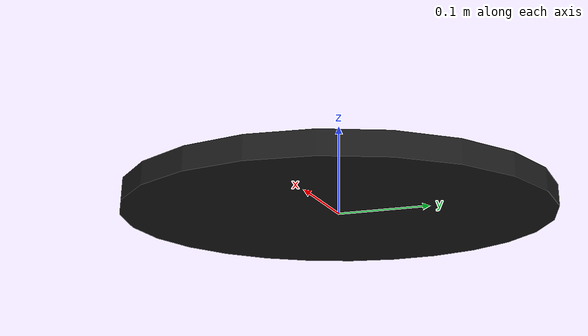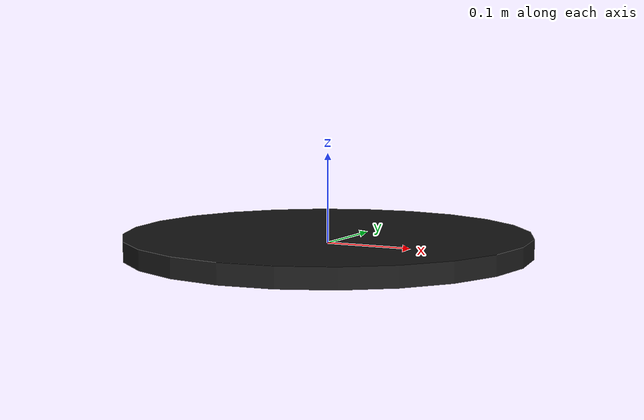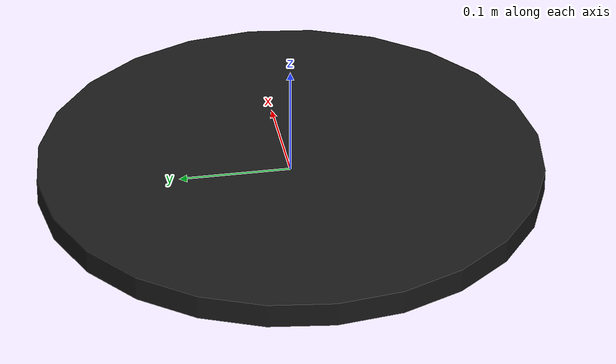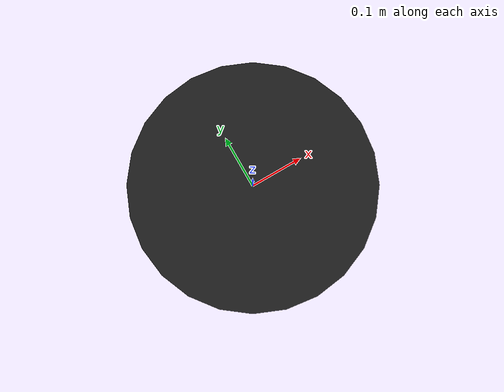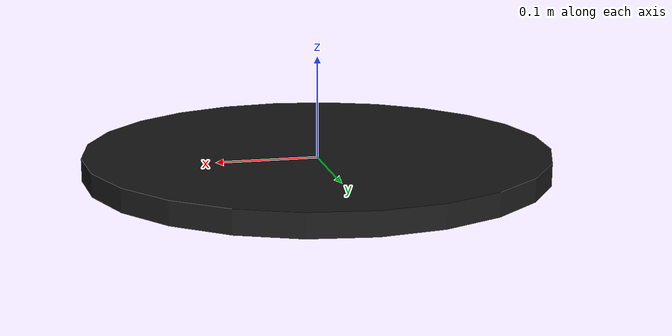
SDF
<?xml version="1.0"?>
<sdf version="1.7">
  <model name="tray">
    <link name="tray">
      <inertial>
        <pose>0 0 0 0 0 0</pose>
        <mass>1</mass>
        <!-- Inertia values were calculated to be consistent with the mass and
             geometry size, assuming a uniform density. -->
        <inertia>
          <ixx>0.013105</ixx>
          <ixy>0</ixy>
          <ixz>0</ixz>
          <iyy>0.013105</iyy>
          <iyz>0</iyz>
          <izz>0.026129</izz>
        </inertia>
      </inertial>
      <visual name="tray">
        <pose>0 0 0.0 0 0 0</pose>
        <geometry>
          <cylinder>
            <radius>0.2276</radius>
            <length>0.022</length>
          </cylinder>
        </geometry>
        <material>
          <diffuse>0.1 0.1 0.1 0.9</diffuse>
        </material>
      </visual>
      <collision name="tray">
        <pose>0 0 0.0 0 0 0</pose>
        <geometry>
          <cylinder>
            <radius>0.2286</radius>
            <length>0.022</length>
          </cylinder>
        </geometry>
        <drake:proximity_properties>
          <drake:compliant_hydroelastic/>
          <drake:hydroelastic_modulus> 3.0e7 </drake:hydroelastic_modulus>
          <drake:mesh_resolution_hint> 0.18 </drake:mesh_resolution_hint>
          <drake:hunt_crossley_dissipation>10</drake:hunt_crossley_dissipation>
          <drake:mu_dynamic>0.4</drake:mu_dynamic>
        </drake:proximity_properties>
      </collision>
    </link>
  </model>
</sdf>
